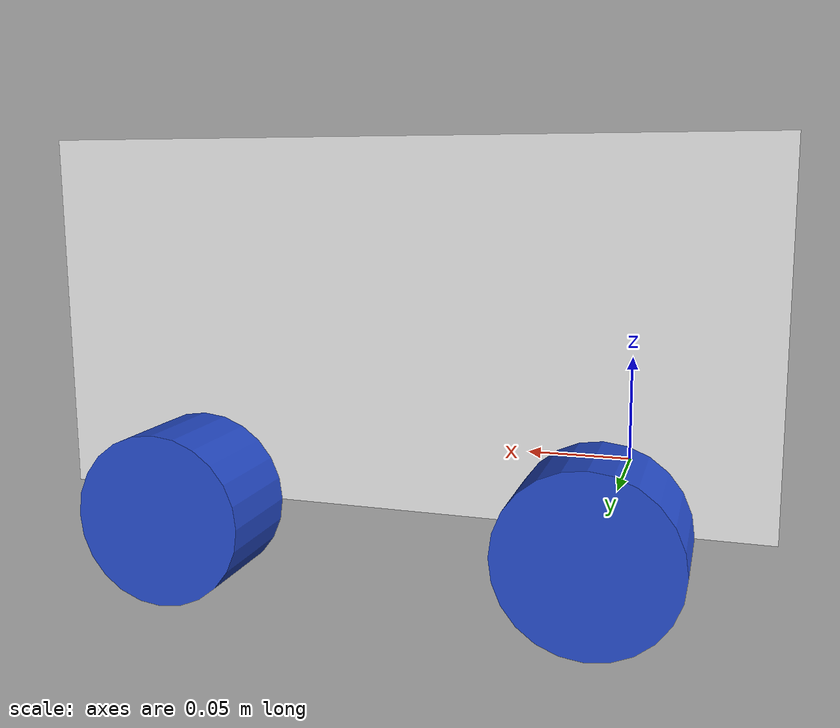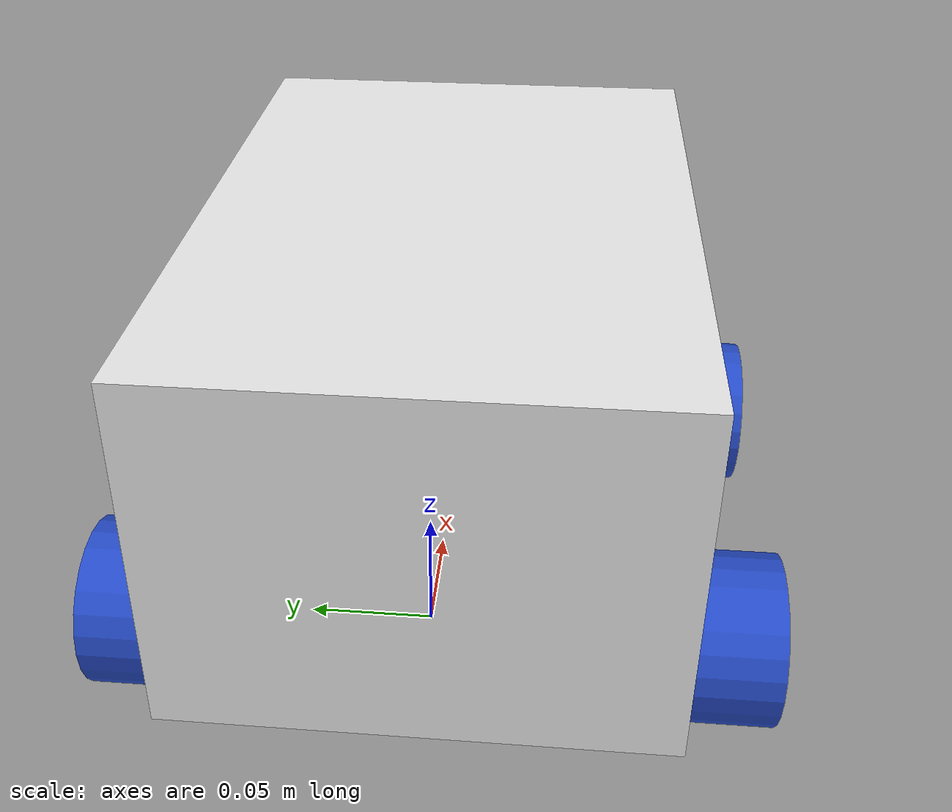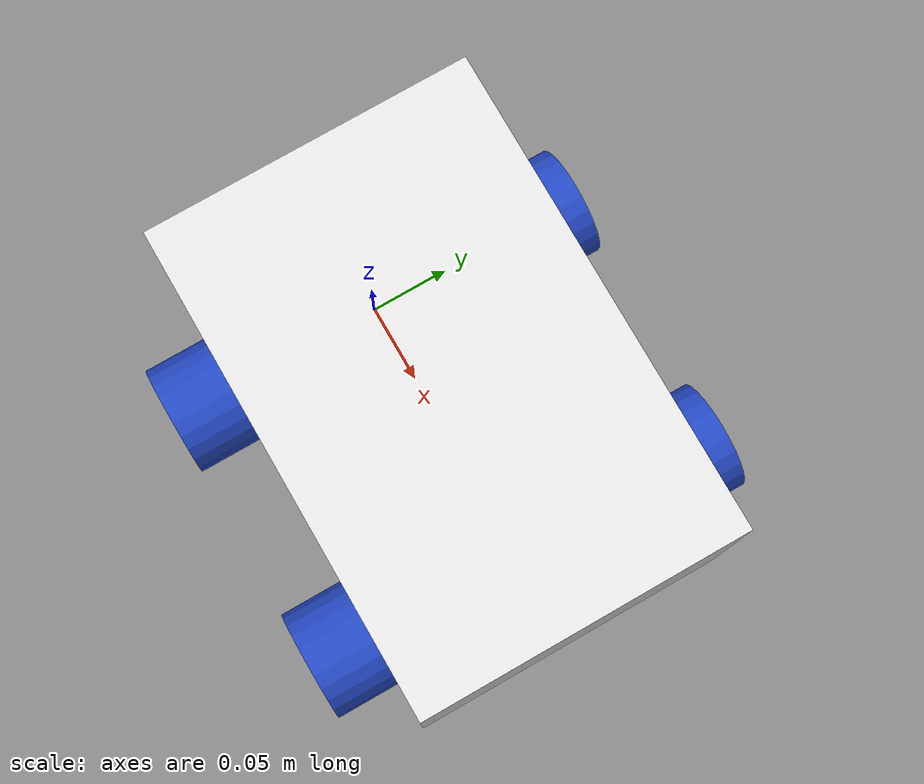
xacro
<?xml version="1.0"?>
<robot xmlns:xacro="http://www.ros.org/wiki/xacro">

    <!-- Example link -->
    <xacro:include filename="inertial_macros.xacro"/>

    <!-- Example link -->
    <link name="base_link">
    </link>

    <joint name="base_link" type="fixed">
        <parent link="base_link"/>
        <child link="chassis"/>
        <origin xyz="-0.065 0 0"/>
    </joint>

    <!--esta huella es para el perimetro la informacion  este es mi volumen y puedo pasar -->
    <joint name="base_footprint_joint" type="fixed">
        <parent link="base_link"/>
        <child link="base_footprint"/>
        <origin xyz="0 0 -0.035"/>
    </joint>

    <link name="base_footprint">
    </link>

    <!-- chassis link -->
    <link name="chassis">
        <visual>
            <origin xyz="0.15 0 0.075"/>
            <geometry>
                <box size="0.3 0.2 0.15"/>
            </geometry>
            <material name="white"/>
        </visual>
        <collision>
            <origin xyz="0.15 0 0.075"/>
            <geometry>
                <box size="0.3 0.2 0.15"/>
            </geometry>
        </collision>
        <xacro:inertial_box mass="0.5" x="0.3" y="0.3" z="0.15">
            <origin xyz="0.15 0 0.075" rpy="0 0 0"/>
        </xacro:inertial_box>
    </link>
    <gazebo reference="chassis">
        <material>Gazebo/White</material>
    </gazebo>

    <!-- left wheel joint -->
    <joint name="left_wheel_joint" type="continuous">
        <parent link="base_link"/>
        <child link="left_wheel"/>
        <origin xyz="0 0.12 0" rpy="-${pi/2} 0 0"/>
        <axis xyz="0 0 1"/>
    </joint>

    <!-- left wheel link -->
    <link name="left_wheel">
        <visual>
            <geometry>
                <cylinder radius="0.035" length="0.04"/>
            </geometry>
            <material name="blue"/>
        </visual>
        <collision>
            <geometry>
                <sphere radius="0.035"/>
            </geometry>
        </collision>
        <xacro:inertial_cylinder mass="0.1" length="0.04" radius="0.035">
            <origin xyz="0 0.1 0" rpy="0 0 0"/>
        </xacro:inertial_cylinder>
    </link>
    <gazebo reference="left_wheel">
        <material>Gazebo/Blue</material>
    </gazebo>

    <!-- right wheel joint -->
    <joint name="right_wheel_joint" type="continuous">
        <parent link="base_link"/>
        <child link="right_wheel"/>
        <origin xyz="0 -0.12 0" rpy="${pi/2} 0 0"/>
        <axis xyz="0 0 -1"/>
    </joint>

    <!-- right wheel link -->
    <link name="right_wheel">
        <visual>
            <geometry>
                <cylinder radius="0.035" length="0.04"/>
            </geometry>
            <material name="blue"/>
        </visual>
        <collision>
            <geometry>
                <sphere radius="0.035"/>
            </geometry>
        </collision>
        <xacro:inertial_cylinder mass="0.1" length="0.04" radius="0.035">
            <origin xyz="0 0 0" rpy="0 0 0"/>
        </xacro:inertial_cylinder>
    </link>
    <gazebo reference="right_wheel">
        <material>Gazebo/Blue</material>
    </gazebo>

    <!-- steering joint -->
    <joint name="steering_joint" type="revolute">
        <limit lower="-1" upper="1" effort="1" velocity="5"/>
        <parent link="base_link"/>
        <child link="steering_wheel"/>
        <origin xyz="0.17 0 0" rpy="0 0 0"/>
        <axis xyz="0 0 1"/>
    </joint>

    <!-- steering link -->
    <link name="steering_wheel">
        <visual>
            <geometry>
                <cylinder radius="0.001" length="0.001"/>
            </geometry>
            <material name="blue"/>
        </visual>
        <collision>
            <geometry>
                <sphere radius="0.001"/>
            </geometry>
        </collision>
        <xacro:inertial_cylinder mass="0.001" length="0.001" radius="0.001">
            <origin xyz="0 0 0" rpy="0 0 0"/>
        </xacro:inertial_cylinder>
    </link>
    <gazebo reference="steering_wheel">
        <material>Gazebo/Blue</material>
    </gazebo>

    <!-- front left wheel steer joint -->
    <joint name="front_left_steer_joint" type="revolute">
        <limit lower="-1" upper="1" effort="1" velocity="5"/>
        <parent link="base_link"/>
        <child link="left_wheel_steer"/>
        <origin xyz="0.17 0.12 0" rpy="0 0 0"/>
        <axis xyz="0 0 1"/>
    </joint>

    <!-- front left wheel steer link -->
    <link name="left_wheel_steer">
        <visual>
            <geometry>
                <cylinder radius="0.001" length="0.001"/>
            </geometry>
            <material name="blue"/>
        </visual>
        <collision>
            <geometry>
                <sphere radius="0.001"/>
            </geometry>
        </collision>
        <xacro:inertial_cylinder mass="0.001" length="0.001" radius="0.001">
            <origin xyz="0 0 0" rpy="0 0 0"/>
        </xacro:inertial_cylinder>
    </link>
    <gazebo reference="left_wheel_steer">
        <material>Gazebo/Blue</material>
    </gazebo>

    <!-- front left wheel joint -->
    <joint name="front_left_wheel_joint" type="continuous">
        <parent link="left_wheel_steer"/>
        <child link="F_left_wheel"/>
        <origin xyz="0 0 0" rpy="-${pi/2} 0 0"/>
        <axis xyz="0 0 1"/>
    </joint>

    <!-- front left wheel link -->
    <link name="F_left_wheel">
        <visual>
            <geometry>
                <cylinder radius="0.035" length="0.04"/>
            </geometry>
            <material name="blue"/>
        </visual>
        <collision>
            <geometry>
                <sphere radius="0.035"/>
            </geometry>
        </collision>
        <xacro:inertial_cylinder mass="0.1" length="0.04" radius="0.035">
            <origin xyz="0 0 0" rpy="0 0 0"/>
        </xacro:inertial_cylinder>
    </link>
    <gazebo reference="F_left_wheel">
        <material>Gazebo/Blue</material>
    </gazebo>

    <!-- front right wheel steer joint -->
    <joint name="front_right_steer_joint" type="revolute">
        <limit lower="-1" upper="1" effort="1" velocity="5"/>
        <parent link="base_link"/>
        <child link="right_wheel_steer"/>
        <origin xyz="0.17 -0.12 0" rpy="0 0 0"/>
        <axis xyz="0 0 1"/>
    </joint>

    <!-- front left wheel steer link -->
    <link name="right_wheel_steer">
        <visual>
            <geometry>
                <cylinder radius="0.001" length="0.001"/>
            </geometry>
            <material name="blue"/>
        </visual>
        <collision>
            <geometry>
                <sphere radius="0.001"/>
            </geometry>
        </collision>
        <xacro:inertial_cylinder mass="0.001" length="0.001" radius="0.001">
            <origin xyz="0 0 0" rpy="0 0 0"/>
        </xacro:inertial_cylinder>
    </link>
    <gazebo reference="right_wheel_steer">
        <material>Gazebo/Blue</material>
    </gazebo>

    <!--front right wheel joint -->
    <joint name="front_right_wheel_joint" type="continuous">
        <parent link="right_wheel_steer"/>
        <child link="F_right_wheel"/>
        <origin xyz="0 0 0" rpy="${pi/2} 0 0"/>
        <axis xyz="0 0 1"/>
    </joint>

    <!-- front right wheel link -->
    <link name="F_right_wheel">
        <visual>
            <geometry>
                <cylinder radius="0.035" length="0.04"/>
            </geometry>
            <material name="blue"/>
        </visual>
        <collision>
            <geometry>
                <sphere radius="0.035"/>
            </geometry>
        </collision>
        <xacro:inertial_cylinder mass="0.1" length="0.04" radius="0.035">
            <origin xyz="0 0 0" rpy="0 0 0"/>
        </xacro:inertial_cylinder>
    </link>
    <gazebo reference="F_right_wheel">
        <material>Gazebo/Blue</material>
    </gazebo>
</robot>
